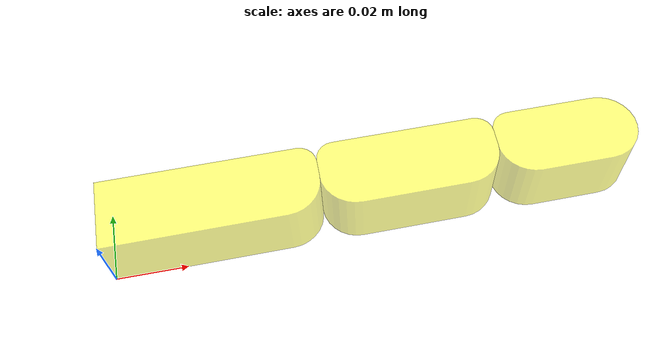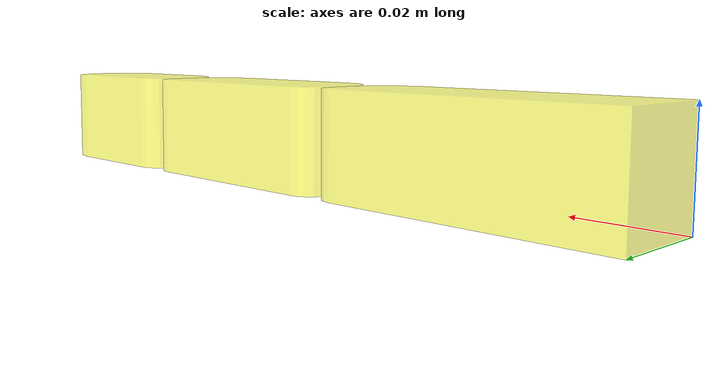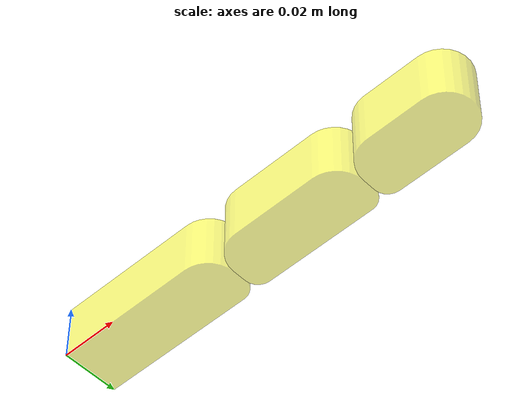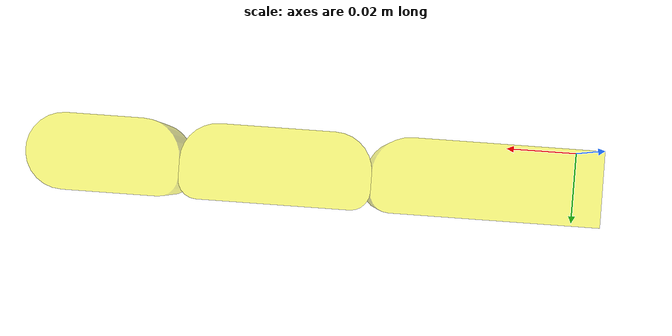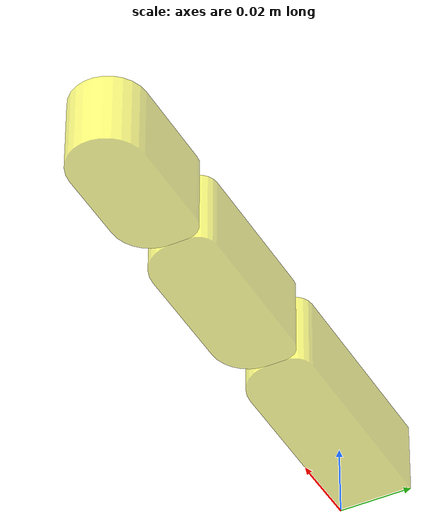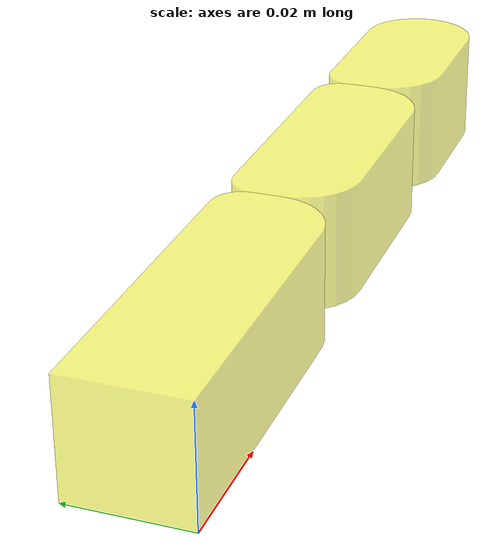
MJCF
<mujoco model="simple_finger">
    <compiler angle="degree" coordinate="local" inertiafromgeom="true"/>
    <option timestep="0.005" gravity="0 0 0" iterations="50" integrator="Euler"/>

    <asset>
        <!-- Meshes for physical links -->
        <mesh name="link_A_mesh" file="assets/link_A.stl" scale="0.001 0.001 0.001"/>
        <mesh name="link_B_mesh" file="assets/link_B.stl" scale="0.001 0.001 0.001"/>
        <mesh name="link_C_mesh" file="assets/link_C.stl" scale="0.001 0.001 0.001"/>
        <!-- Meshes for visualization links -->
        <mesh name="link_A_viz_mesh" file="assets/link_A_viz.stl" scale="0.001 0.001 0.001"/>
        <mesh name="link_B_viz_mesh" file="assets/link_B_viz.stl" scale="0.001 0.001 0.001"/>
        <mesh name="link_C_viz_mesh" file="assets/link_C_viz.stl" scale="0.001 0.001 0.001"/>

        <!-- adjust scaling. stl in mm and not in m, here we choose metric system, eg, lengh 1 = 1 meter-->
    </asset>

    <default>
        <!-- Default geom properties -->
        <geom rgba="1 1 1 1" type="mesh" density="662" friction="1 0.005 0.001" condim="3" margin="0.0005" contype="1" conaffinity="1"/>
        <!-- Default joint properties -->
        <joint type="hinge" limited="true" damping="0.05" armature="0.001" margin="0.01" frictionloss="0.001"/>
        <!-- Default actuator properties -->
        <position ctrllimited="true" forcelimited="true" forcerange="-1 1" kp="2."/>
        <!-- Default tendon properties -->
        <tendon limited="true" range="-0.001 0.001"/>

    </default>

    <worldbody>
        <light diffuse=".5 .5 .5" pos="0 0 3" dir="0 0 -1"/>

        <!-- Base link -->
        <body name="link_A" pos="0 0 0">
            <!-- Assuming the base link is fixed to the world -->
            <!-- removing joint type fixes it in space (0 DOF) -->
            <!-- physical links are blue and transparent, visual links are green-->
            <geom type="mesh" mesh="link_A_mesh" rgba="1 1 0 0.5" mass = "0.1"/>

            <!-- Virtual link for first rolling joint -->
            <body name="virtual_link_1" pos="0 0 0"> <!-- Adjust the position based on your requirement -->
                <joint type="hinge" name="virtual_joint_1" axis="0 0 1" pos="0.05 0.01 0" range="-60 1"/>
                <inertial pos="0.06 0.01 0" mass="1e-6" diaginertia="1e-15 1e-15 1e-15" />

                <!-- Second link -->
                <body name="link_B" pos="0 0 0">
                    <joint type="hinge" name="joint_1" axis="0 0 1" pos="0.07 0.01 0.2" range="-60 1"/>
                    <geom type="mesh" mesh="link_B_mesh" rgba="1 1 0 0.5" mass = "0.1"/>

                    <!-- Virtual link for second rolling joint -->
                    <body name="virtual_link_2" pos="0 0 0"> <!-- Adjust the position based on your requirement -->
                        <joint type="hinge" name="virtual_joint_2" axis="0 0 1" pos="0.1 0.01 0.2" range="-50 1"/>
                        <inertial pos="0.11 0.01 0.2" mass="1e-6" diaginertia="1e-15 1e-15 1e-15" />

                        <!-- Third link -->
                        <body name="link_C" pos="0 0 0">
                            <joint type="hinge" name="joint_2" axis="0 0 1" pos="0.12 0.01 0" range="-50 1"/>
                            <geom type="mesh" mesh="link_C_mesh" rgba="1 1 0 0.5" mass="10"/>

                        </body>
                    </body>
                </body>
            </body>
        </body>
    </worldbody>

    <contact>
        <!-- neighboring bodies are excluded from contact calculation -->
        <exclude body1="link_A" body2="virtual_link_1"/>
        <exclude body1="link_A" body2="link_B"/>
        <exclude body1="virtual_link_1" body2="link_B"/>
        <exclude body1="link_B" body2="virtual_link_2"/>
        <exclude body1="link_B" body2="link_C"/>
        <exclude body1="virtual_link_2" body2="link_C"/>
    </contact>

    <tendon>
        <!-- Constrain virtual joint 1 to have the same angle as joint 1 -->
        <fixed name="constraint_joint_1">
            <joint joint="virtual_joint_1" coef="1"/>
            <joint joint="joint_1" coef="-1"/>
        </fixed>
        <!-- Constrain virtual joint 2 to have the same angle as joint 2 -->
        <fixed name="constraint_joint_2">
            <joint joint="virtual_joint_2" coef="1"/>
            <joint joint="joint_2" coef="-1"/>
        </fixed>
    </tendon>

    <actuator>
        <position joint="joint_1" kp="1" ctrlrange="-0.78 0"/> <!-- ctrl in radiant / 2 (because actually 2 joints per real joint) -->
        <position joint="joint_2" kp="1" ctrlrange="-0.78 0"/> <!-- no idea why its in radian here and not degrees-->
    </actuator>

</mujoco>
